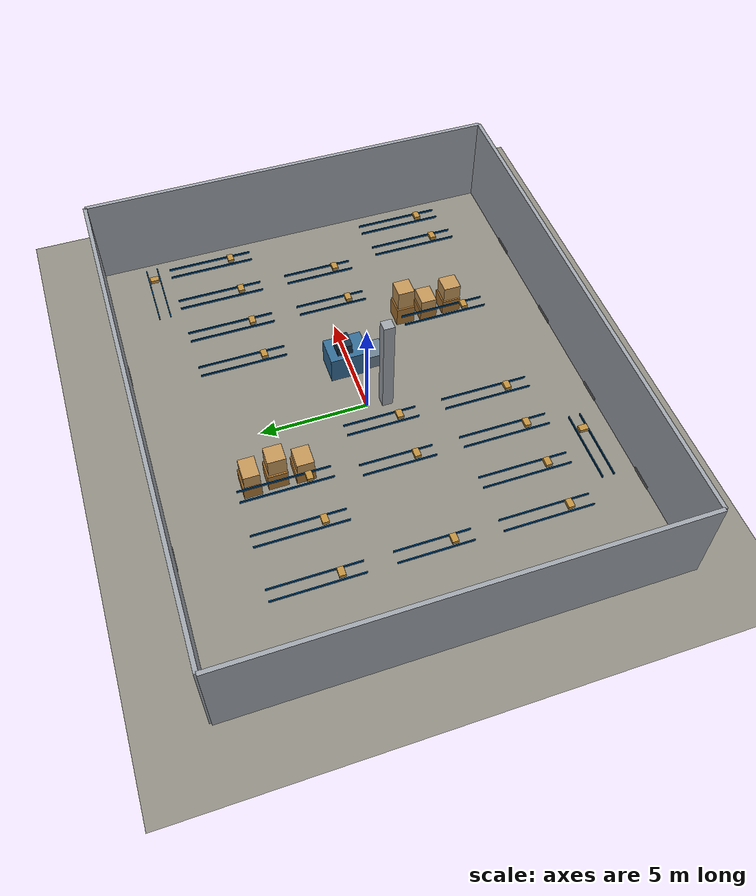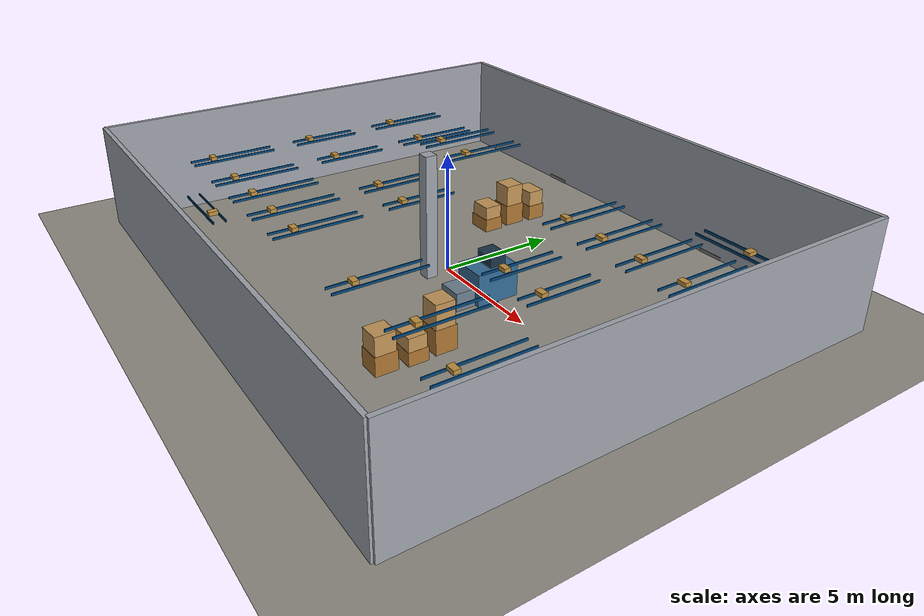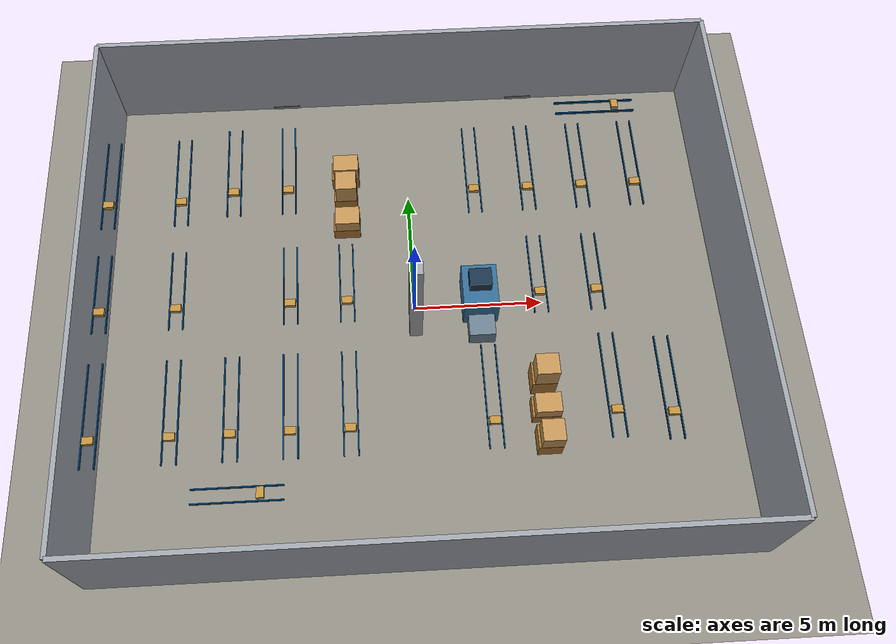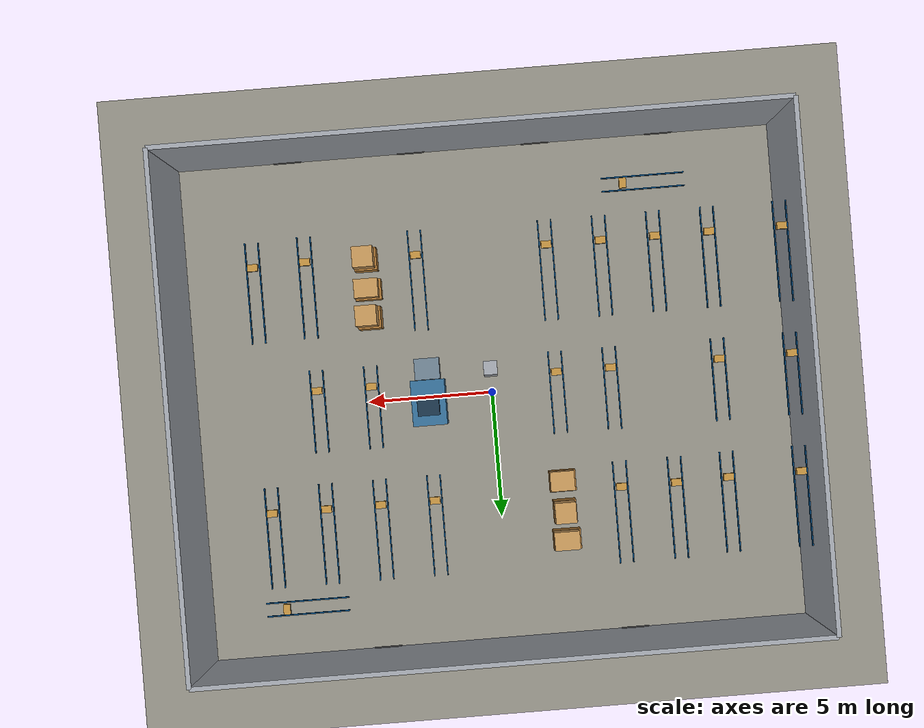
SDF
<sdf version="1.8">
 <world name="warehouse_full_4cam_mixed">
  <model name="ground_plane">
   <static>true</static>
   <link name="link">
    <collision name="collision">
     <geometry><plane><normal>0 0 1</normal><size>24.5 20.5</size></plane></geometry>
    </collision>
    <visual name="visual">
     <geometry><plane><normal>0 0 1</normal><size>24.5 20.5</size></plane></geometry>
     <material>
      <ambient>0.56 0.55 0.51 1</ambient>
      <diffuse>0.56 0.55 0.51 1</diffuse>
      <specular>0.05 0.05 0.05 1</specular>
     </material>
    </visual>
   </link>
  </model>
  <model name="warehouse_walls">
   <static>true</static>
   <link name="wall_east">
    <pose>12.000 0.000 2.250 0 0 0</pose>
    <collision name="collision"><geometry><box><size>0.180 20.000 4.500</size></box></geometry></collision>
    <sensor name="contact" type="contact">
     <contact><collision>collision</collision></contact>
     <update_rate>60</update_rate>
    </sensor>
    <visual name="visual">
     <geometry><box><size>0.180 20.000 4.500</size></box></geometry>
     <material><ambient>0.62 0.64 0.67 1</ambient><diffuse>0.62 0.64 0.67 1</diffuse></material>
    </visual>
   </link>
   <link name="wall_west">
    <pose>-12.000 0.000 2.250 0 0 0</pose>
    <collision name="collision"><geometry><box><size>0.180 20.000 4.500</size></box></geometry></collision>
    <sensor name="contact" type="contact">
     <contact><collision>collision</collision></contact>
     <update_rate>60</update_rate>
    </sensor>
    <visual name="visual">
     <geometry><box><size>0.180 20.000 4.500</size></box></geometry>
     <material><ambient>0.62 0.64 0.67 1</ambient><diffuse>0.62 0.64 0.67 1</diffuse></material>
    </visual>
   </link>
   <link name="wall_north">
    <pose>0.000 10.000 2.250 0 0 0</pose>
    <collision name="collision"><geometry><box><size>24.000 0.180 4.500</size></box></geometry></collision>
    <sensor name="contact" type="contact">
     <contact><collision>collision</collision></contact>
     <update_rate>60</update_rate>
    </sensor>
    <visual name="visual">
     <geometry><box><size>24.000 0.180 4.500</size></box></geometry>
     <material><ambient>0.62 0.64 0.67 1</ambient><diffuse>0.62 0.64 0.67 1</diffuse></material>
    </visual>
   </link>
   <link name="wall_south">
    <pose>0.000 -10.000 2.250 0 0 0</pose>
    <collision name="collision"><geometry><box><size>24.000 0.180 4.500</size></box></geometry></collision>
    <sensor name="contact" type="contact">
     <contact><collision>collision</collision></contact>
     <update_rate>60</update_rate>
    </sensor>
    <visual name="visual">
     <geometry><box><size>24.000 0.180 4.500</size></box></geometry>
     <material><ambient>0.62 0.64 0.67 1</ambient><diffuse>0.62 0.64 0.67 1</diffuse></material>
    </visual>
   </link>
   <link name="south_dock_a">
    <pose>-7.500 -9.920 0.075 0 0 0</pose>
    <visual name="visual">
     <geometry><box><size>1.100 0.070 0.150</size></box></geometry>
     <material><ambient>0.50 0.50 0.50 1</ambient><diffuse>0.50 0.50 0.50 1</diffuse></material>
    </visual>
   </link>
   <link name="south_dock_b">
    <pose>-2.500 -9.920 0.075 0 0 0</pose>
    <visual name="visual">
     <geometry><box><size>1.100 0.070 0.150</size></box></geometry>
     <material><ambient>0.50 0.50 0.50 1</ambient><diffuse>0.50 0.50 0.50 1</diffuse></material>
    </visual>
   </link>
   <link name="south_dock_c">
    <pose>2.500 -9.920 0.075 0 0 0</pose>
    <visual name="visual">
     <geometry><box><size>1.100 0.070 0.150</size></box></geometry>
     <material><ambient>0.50 0.50 0.50 1</ambient><diffuse>0.50 0.50 0.50 1</diffuse></material>
    </visual>
   </link>
   <link name="south_dock_d">
    <pose>7.500 -9.920 0.075 0 0 0</pose>
    <visual name="visual">
     <geometry><box><size>1.100 0.070 0.150</size></box></geometry>
     <material><ambient>0.50 0.50 0.50 1</ambient><diffuse>0.50 0.50 0.50 1</diffuse></material>
    </visual>
   </link>
   <link name="north_dock_a">
    <pose>-5.000 9.920 0.075 0 0 0</pose>
    <visual name="visual">
     <geometry><box><size>1.100 0.070 0.150</size></box></geometry>
     <material><ambient>0.50 0.50 0.50 1</ambient><diffuse>0.50 0.50 0.50 1</diffuse></material>
    </visual>
   </link>
   <link name="north_dock_b">
    <pose>5.000 9.920 0.075 0 0 0</pose>
    <visual name="visual">
     <geometry><box><size>1.100 0.070 0.150</size></box></geometry>
     <material><ambient>0.50 0.50 0.50 1</ambient><diffuse>0.50 0.50 0.50 1</diffuse></material>
    </visual>
   </link>
  </model>
  <model name="warehouse_rack_occluders">
   <static>true</static>
   <link name="rack_W1_south">
    <pose>-8.825 -4.550 1.045 0 0 0</pose>
    <collision name="collision"><geometry><box><size>0.550 3.900 2.090</size></box></geometry></collision>
    <sensor name="contact" type="contact">
     <contact><collision>collision</collision></contact>
     <update_rate>60</update_rate>
    </sensor>
   </link>
   <link name="rail_W1_south_west">
    <pose>-9.080 -4.550 2.160 0 0 0</pose>
    <visual name="visual">
     <geometry><box><size>0.040 3.900 0.100</size></box></geometry>
     <material><ambient>0.00 0.28 0.50 1</ambient><diffuse>0.00 0.28 0.50 1</diffuse></material>
    </visual>
   </link>
   <link name="rail_W1_south_east">
    <pose>-8.570 -4.550 2.160 0 0 0</pose>
    <visual name="visual">
     <geometry><box><size>0.040 3.900 0.100</size></box></geometry>
     <material><ambient>0.00 0.28 0.50 1</ambient><diffuse>0.00 0.28 0.50 1</diffuse></material>
    </visual>
   </link>
   <link name="shelfbox_W1_south">
    <pose>-8.825 -5.525 2.290 0 0 0</pose>
    <visual name="visual">
     <geometry><box><size>0.390 0.270 0.160</size></box></geometry>
     <material><ambient>0.75 0.56 0.24 1</ambient><diffuse>0.75 0.56 0.24 1</diffuse></material>
    </visual>
   </link>
   <link name="rack_W1_mid">
    <pose>-8.825 0.200 1.045 0 0 0</pose>
    <collision name="collision"><geometry><box><size>0.550 3.200 2.090</size></box></geometry></collision>
    <sensor name="contact" type="contact">
     <contact><collision>collision</collision></contact>
     <update_rate>60</update_rate>
    </sensor>
   </link>
   <link name="rail_W1_mid_west">
    <pose>-9.080 0.200 2.160 0 0 0</pose>
    <visual name="visual">
     <geometry><box><size>0.040 3.200 0.100</size></box></geometry>
     <material><ambient>0.00 0.28 0.50 1</ambient><diffuse>0.00 0.28 0.50 1</diffuse></material>
    </visual>
   </link>
   <link name="rail_W1_mid_east">
    <pose>-8.570 0.200 2.160 0 0 0</pose>
    <visual name="visual">
     <geometry><box><size>0.040 3.200 0.100</size></box></geometry>
     <material><ambient>0.00 0.28 0.50 1</ambient><diffuse>0.00 0.28 0.50 1</diffuse></material>
    </visual>
   </link>
   <link name="shelfbox_W1_mid">
    <pose>-8.825 -0.600 2.290 0 0 0</pose>
    <visual name="visual">
     <geometry><box><size>0.390 0.270 0.160</size></box></geometry>
     <material><ambient>0.75 0.56 0.24 1</ambient><diffuse>0.75 0.56 0.24 1</diffuse></material>
    </visual>
   </link>
   <link name="rack_W1_north">
    <pose>-8.825 4.950 1.045 0 0 0</pose>
    <collision name="collision"><geometry><box><size>0.550 3.900 2.090</size></box></geometry></collision>
    <sensor name="contact" type="contact">
     <contact><collision>collision</collision></contact>
     <update_rate>60</update_rate>
    </sensor>
   </link>
   <link name="rail_W1_north_west">
    <pose>-9.080 4.950 2.160 0 0 0</pose>
    <visual name="visual">
     <geometry><box><size>0.040 3.900 0.100</size></box></geometry>
     <material><ambient>0.00 0.28 0.50 1</ambient><diffuse>0.00 0.28 0.50 1</diffuse></material>
    </visual>
   </link>
   <link name="rail_W1_north_east">
    <pose>-8.570 4.950 2.160 0 0 0</pose>
    <visual name="visual">
     <geometry><box><size>0.040 3.900 0.100</size></box></geometry>
     <material><ambient>0.00 0.28 0.50 1</ambient><diffuse>0.00 0.28 0.50 1</diffuse></material>
    </visual>
   </link>
   <link name="shelfbox_W1_north">
    <pose>-8.825 3.975 2.290 0 0 0</pose>
    <visual name="visual">
     <geometry><box><size>0.390 0.270 0.160</size></box></geometry>
     <material><ambient>0.75 0.56 0.24 1</ambient><diffuse>0.75 0.56 0.24 1</diffuse></material>
    </visual>
   </link>
   <link name="rack_W2_south">
    <pose>-6.725 -4.550 1.045 0 0 0</pose>
    <collision name="collision"><geometry><box><size>0.550 3.900 2.090</size></box></geometry></collision>
    <sensor name="contact" type="contact">
     <contact><collision>collision</collision></contact>
     <update_rate>60</update_rate>
    </sensor>
   </link>
   <link name="rail_W2_south_west">
    <pose>-6.980 -4.550 2.160 0 0 0</pose>
    <visual name="visual">
     <geometry><box><size>0.040 3.900 0.100</size></box></geometry>
     <material><ambient>0.00 0.28 0.50 1</ambient><diffuse>0.00 0.28 0.50 1</diffuse></material>
    </visual>
   </link>
   <link name="rail_W2_south_east">
    <pose>-6.470 -4.550 2.160 0 0 0</pose>
    <visual name="visual">
     <geometry><box><size>0.040 3.900 0.100</size></box></geometry>
     <material><ambient>0.00 0.28 0.50 1</ambient><diffuse>0.00 0.28 0.50 1</diffuse></material>
    </visual>
   </link>
   <link name="shelfbox_W2_south">
    <pose>-6.725 -5.525 2.290 0 0 0</pose>
    <visual name="visual">
     <geometry><box><size>0.390 0.270 0.160</size></box></geometry>
     <material><ambient>0.75 0.56 0.24 1</ambient><diffuse>0.75 0.56 0.24 1</diffuse></material>
    </visual>
   </link>
   <link name="rack_W2_mid">
    <pose>-6.4500 -7.6500 1.0450 0.0000 0.0000 1.5708</pose>
    <collision name="collision"><geometry><box><size>0.550 3.200 2.090</size></box></geometry></collision>
    <sensor name="contact" type="contact">
     <contact><collision>collision</collision></contact>
     <update_rate>60</update_rate>
    </sensor>
   </link>
   <link name="rail_W2_mid_west">
    <pose>-6.4500 -7.9050 2.1600 0.0000 0.0000 1.5708</pose>
    <visual name="visual">
     <geometry><box><size>0.040 3.200 0.100</size></box></geometry>
     <material><ambient>0.00 0.28 0.50 1</ambient><diffuse>0.00 0.28 0.50 1</diffuse></material>
    </visual>
   </link>
   <link name="rail_W2_mid_east">
    <pose>-6.4500 -7.3950 2.1600 0.0000 0.0000 1.5708</pose>
    <visual name="visual">
     <geometry><box><size>0.040 3.200 0.100</size></box></geometry>
     <material><ambient>0.00 0.28 0.50 1</ambient><diffuse>0.00 0.28 0.50 1</diffuse></material>
    </visual>
   </link>
   <link name="shelfbox_W2_mid">
    <pose>-5.6500 -7.6500 2.2900 0.0000 0.0000 1.5708</pose>
    <visual name="visual">
     <geometry><box><size>0.390 0.270 0.160</size></box></geometry>
     <material><ambient>0.75 0.56 0.24 1</ambient><diffuse>0.75 0.56 0.24 1</diffuse></material>
    </visual>
   </link>
   <link name="rack_W2_north">
    <pose>-6.725 4.950 1.305 0 0 0</pose>
    <collision name="collision"><geometry><box><size>0.550 3.900 2.610</size></box></geometry></collision>
    <sensor name="contact" type="contact">
     <contact><collision>collision</collision></contact>
     <update_rate>60</update_rate>
    </sensor>
   </link>
   <link name="rail_W2_north_west">
    <pose>-6.980 4.950 2.680 0 0 0</pose>
    <visual name="visual">
     <geometry><box><size>0.040 3.900 0.100</size></box></geometry>
     <material><ambient>0.00 0.28 0.50 1</ambient><diffuse>0.00 0.28 0.50 1</diffuse></material>
    </visual>
   </link>
   <link name="rail_W2_north_east">
    <pose>-6.470 4.950 2.680 0 0 0</pose>
    <visual name="visual">
     <geometry><box><size>0.040 3.900 0.100</size></box></geometry>
     <material><ambient>0.00 0.28 0.50 1</ambient><diffuse>0.00 0.28 0.50 1</diffuse></material>
    </visual>
   </link>
   <link name="shelfbox_W2_north">
    <pose>-6.725 3.975 2.810 0 0 0</pose>
    <visual name="visual">
     <geometry><box><size>0.390 0.270 0.160</size></box></geometry>
     <material><ambient>0.75 0.56 0.24 1</ambient><diffuse>0.75 0.56 0.24 1</diffuse></material>
    </visual>
   </link>
   <link name="rack_W3_south">
    <pose>-4.625 -4.550 1.045 0 0 0</pose>
    <collision name="collision"><geometry><box><size>0.550 3.900 2.090</size></box></geometry></collision>
    <sensor name="contact" type="contact">
     <contact><collision>collision</collision></contact>
     <update_rate>60</update_rate>
    </sensor>
   </link>
   <link name="rail_W3_south_west">
    <pose>-4.880 -4.550 2.160 0 0 0</pose>
    <visual name="visual">
     <geometry><box><size>0.040 3.900 0.100</size></box></geometry>
     <material><ambient>0.00 0.28 0.50 1</ambient><diffuse>0.00 0.28 0.50 1</diffuse></material>
    </visual>
   </link>
   <link name="rail_W3_south_east">
    <pose>-4.370 -4.550 2.160 0 0 0</pose>
    <visual name="visual">
     <geometry><box><size>0.040 3.900 0.100</size></box></geometry>
     <material><ambient>0.00 0.28 0.50 1</ambient><diffuse>0.00 0.28 0.50 1</diffuse></material>
    </visual>
   </link>
   <link name="shelfbox_W3_south">
    <pose>-4.625 -5.525 2.290 0 0 0</pose>
    <visual name="visual">
     <geometry><box><size>0.390 0.270 0.160</size></box></geometry>
     <material><ambient>0.75 0.56 0.24 1</ambient><diffuse>0.75 0.56 0.24 1</diffuse></material>
    </visual>
   </link>
   <link name="rack_W3_mid">
    <pose>-4.625 0.200 1.045 0 0 0</pose>
    <collision name="collision"><geometry><box><size>0.550 3.200 2.090</size></box></geometry></collision>
    <sensor name="contact" type="contact">
     <contact><collision>collision</collision></contact>
     <update_rate>60</update_rate>
    </sensor>
   </link>
   <link name="rail_W3_mid_west">
    <pose>-4.880 0.200 2.160 0 0 0</pose>
    <visual name="visual">
     <geometry><box><size>0.040 3.200 0.100</size></box></geometry>
     <material><ambient>0.00 0.28 0.50 1</ambient><diffuse>0.00 0.28 0.50 1</diffuse></material>
    </visual>
   </link>
   <link name="rail_W3_mid_east">
    <pose>-4.370 0.200 2.160 0 0 0</pose>
    <visual name="visual">
     <geometry><box><size>0.040 3.200 0.100</size></box></geometry>
     <material><ambient>0.00 0.28 0.50 1</ambient><diffuse>0.00 0.28 0.50 1</diffuse></material>
    </visual>
   </link>
   <link name="shelfbox_W3_mid">
    <pose>-4.625 -0.600 2.290 0 0 0</pose>
    <visual name="visual">
     <geometry><box><size>0.390 0.270 0.160</size></box></geometry>
     <material><ambient>0.75 0.56 0.24 1</ambient><diffuse>0.75 0.56 0.24 1</diffuse></material>
    </visual>
   </link>
   <link name="rack_W3_north">
    <pose>-4.625 4.950 1.305 0 0 0</pose>
    <collision name="collision"><geometry><box><size>0.550 3.900 2.610</size></box></geometry></collision>
    <sensor name="contact" type="contact">
     <contact><collision>collision</collision></contact>
     <update_rate>60</update_rate>
    </sensor>
   </link>
   <link name="rail_W3_north_west">
    <pose>-4.880 4.950 2.680 0 0 0</pose>
    <visual name="visual">
     <geometry><box><size>0.040 3.900 0.100</size></box></geometry>
     <material><ambient>0.00 0.28 0.50 1</ambient><diffuse>0.00 0.28 0.50 1</diffuse></material>
    </visual>
   </link>
   <link name="rail_W3_north_east">
    <pose>-4.370 4.950 2.680 0 0 0</pose>
    <visual name="visual">
     <geometry><box><size>0.040 3.900 0.100</size></box></geometry>
     <material><ambient>0.00 0.28 0.50 1</ambient><diffuse>0.00 0.28 0.50 1</diffuse></material>
    </visual>
   </link>
   <link name="shelfbox_W3_north">
    <pose>-4.625 3.975 2.810 0 0 0</pose>
    <visual name="visual">
     <geometry><box><size>0.390 0.270 0.160</size></box></geometry>
     <material><ambient>0.75 0.56 0.24 1</ambient><diffuse>0.75 0.56 0.24 1</diffuse></material>
    </visual>
   </link>
   <link name="rack_W4_south">
    <pose>-2.525 -4.550 1.045 0 0 0</pose>
    <collision name="collision"><geometry><box><size>0.550 3.900 2.090</size></box></geometry></collision>
    <sensor name="contact" type="contact">
     <contact><collision>collision</collision></contact>
     <update_rate>60</update_rate>
    </sensor>
   </link>
   <link name="rail_W4_south_west">
    <pose>-2.780 -4.550 2.160 0 0 0</pose>
    <visual name="visual">
     <geometry><box><size>0.040 3.900 0.100</size></box></geometry>
     <material><ambient>0.00 0.28 0.50 1</ambient><diffuse>0.00 0.28 0.50 1</diffuse></material>
    </visual>
   </link>
   <link name="rail_W4_south_east">
    <pose>-2.270 -4.550 2.160 0 0 0</pose>
    <visual name="visual">
     <geometry><box><size>0.040 3.900 0.100</size></box></geometry>
     <material><ambient>0.00 0.28 0.50 1</ambient><diffuse>0.00 0.28 0.50 1</diffuse></material>
    </visual>
   </link>
   <link name="shelfbox_W4_south">
    <pose>-2.525 -5.525 2.290 0 0 0</pose>
    <visual name="visual">
     <geometry><box><size>0.390 0.270 0.160</size></box></geometry>
     <material><ambient>0.75 0.56 0.24 1</ambient><diffuse>0.75 0.56 0.24 1</diffuse></material>
    </visual>
   </link>
   <link name="rack_W4_mid">
    <pose>-2.525 0.200 1.045 0 0 0</pose>
    <collision name="collision"><geometry><box><size>0.550 3.200 2.090</size></box></geometry></collision>
    <sensor name="contact" type="contact">
     <contact><collision>collision</collision></contact>
     <update_rate>60</update_rate>
    </sensor>
   </link>
   <link name="rail_W4_mid_west">
    <pose>-2.780 0.200 2.160 0 0 0</pose>
    <visual name="visual">
     <geometry><box><size>0.040 3.200 0.100</size></box></geometry>
     <material><ambient>0.00 0.28 0.50 1</ambient><diffuse>0.00 0.28 0.50 1</diffuse></material>
    </visual>
   </link>
   <link name="rail_W4_mid_east">
    <pose>-2.270 0.200 2.160 0 0 0</pose>
    <visual name="visual">
     <geometry><box><size>0.040 3.200 0.100</size></box></geometry>
     <material><ambient>0.00 0.28 0.50 1</ambient><diffuse>0.00 0.28 0.50 1</diffuse></material>
    </visual>
   </link>
   <link name="shelfbox_W4_mid">
    <pose>-2.525 -0.600 2.290 0 0 0</pose>
    <visual name="visual">
     <geometry><box><size>0.390 0.270 0.160</size></box></geometry>
     <material><ambient>0.75 0.56 0.24 1</ambient><diffuse>0.75 0.56 0.24 1</diffuse></material>
    </visual>
   </link>
   <link name="rack_E1_south">
    <pose>2.525 -4.550 1.045 0 0 0</pose>
    <collision name="collision"><geometry><box><size>0.550 3.900 2.090</size></box></geometry></collision>
    <sensor name="contact" type="contact">
     <contact><collision>collision</collision></contact>
     <update_rate>60</update_rate>
    </sensor>
   </link>
   <link name="rail_E1_south_west">
    <pose>2.270 -4.550 2.160 0 0 0</pose>
    <visual name="visual">
     <geometry><box><size>0.040 3.900 0.100</size></box></geometry>
     <material><ambient>0.00 0.28 0.50 1</ambient><diffuse>0.00 0.28 0.50 1</diffuse></material>
    </visual>
   </link>
   <link name="rail_E1_south_east">
    <pose>2.780 -4.550 2.160 0 0 0</pose>
    <visual name="visual">
     <geometry><box><size>0.040 3.900 0.100</size></box></geometry>
     <material><ambient>0.00 0.28 0.50 1</ambient><diffuse>0.00 0.28 0.50 1</diffuse></material>
    </visual>
   </link>
   <link name="shelfbox_E1_south">
    <pose>2.525 -5.525 2.290 0 0 0</pose>
    <visual name="visual">
     <geometry><box><size>0.390 0.270 0.160</size></box></geometry>
     <material><ambient>0.75 0.56 0.24 1</ambient><diffuse>0.75 0.56 0.24 1</diffuse></material>
    </visual>
   </link>
   <link name="rack_E1_north">
    <pose>2.525 4.950 1.045 0 0 0</pose>
    <collision name="collision"><geometry><box><size>0.550 3.900 2.090</size></box></geometry></collision>
    <sensor name="contact" type="contact">
     <contact><collision>collision</collision></contact>
     <update_rate>60</update_rate>
    </sensor>
   </link>
   <link name="rail_E1_north_west">
    <pose>2.270 4.950 2.160 0 0 0</pose>
    <visual name="visual">
     <geometry><box><size>0.040 3.900 0.100</size></box></geometry>
     <material><ambient>0.00 0.28 0.50 1</ambient><diffuse>0.00 0.28 0.50 1</diffuse></material>
    </visual>
   </link>
   <link name="rail_E1_north_east">
    <pose>2.780 4.950 2.160 0 0 0</pose>
    <visual name="visual">
     <geometry><box><size>0.040 3.900 0.100</size></box></geometry>
     <material><ambient>0.00 0.28 0.50 1</ambient><diffuse>0.00 0.28 0.50 1</diffuse></material>
    </visual>
   </link>
   <link name="shelfbox_E1_north">
    <pose>2.525 3.975 2.290 0 0 0</pose>
    <visual name="visual">
     <geometry><box><size>0.390 0.270 0.160</size></box></geometry>
     <material><ambient>0.75 0.56 0.24 1</ambient><diffuse>0.75 0.56 0.24 1</diffuse></material>
    </visual>
   </link>
   <link name="rack_E2_mid">
    <pose>4.625 0.200 1.045 0 0 0</pose>
    <collision name="collision"><geometry><box><size>0.550 3.200 2.090</size></box></geometry></collision>
    <sensor name="contact" type="contact">
     <contact><collision>collision</collision></contact>
     <update_rate>60</update_rate>
    </sensor>
   </link>
   <link name="rail_E2_mid_west">
    <pose>4.370 0.200 2.160 0 0 0</pose>
    <visual name="visual">
     <geometry><box><size>0.040 3.200 0.100</size></box></geometry>
     <material><ambient>0.00 0.28 0.50 1</ambient><diffuse>0.00 0.28 0.50 1</diffuse></material>
    </visual>
   </link>
   <link name="rail_E2_mid_east">
    <pose>4.880 0.200 2.160 0 0 0</pose>
    <visual name="visual">
     <geometry><box><size>0.040 3.200 0.100</size></box></geometry>
     <material><ambient>0.00 0.28 0.50 1</ambient><diffuse>0.00 0.28 0.50 1</diffuse></material>
    </visual>
   </link>
   <link name="shelfbox_E2_mid">
    <pose>4.625 -0.600 2.290 0 0 0</pose>
    <visual name="visual">
     <geometry><box><size>0.390 0.270 0.160</size></box></geometry>
     <material><ambient>0.75 0.56 0.24 1</ambient><diffuse>0.75 0.56 0.24 1</diffuse></material>
    </visual>
   </link>
   <link name="rack_E2_north">
    <pose>4.625 4.950 1.045 0 0 0</pose>
    <collision name="collision"><geometry><box><size>0.550 3.900 2.090</size></box></geometry></collision>
    <sensor name="contact" type="contact">
     <contact><collision>collision</collision></contact>
     <update_rate>60</update_rate>
    </sensor>
   </link>
   <link name="rail_E2_north_west">
    <pose>4.370 4.950 2.160 0 0 0</pose>
    <visual name="visual">
     <geometry><box><size>0.040 3.900 0.100</size></box></geometry>
     <material><ambient>0.00 0.28 0.50 1</ambient><diffuse>0.00 0.28 0.50 1</diffuse></material>
    </visual>
   </link>
   <link name="rail_E2_north_east">
    <pose>4.880 4.950 2.160 0 0 0</pose>
    <visual name="visual">
     <geometry><box><size>0.040 3.900 0.100</size></box></geometry>
     <material><ambient>0.00 0.28 0.50 1</ambient><diffuse>0.00 0.28 0.50 1</diffuse></material>
    </visual>
   </link>
   <link name="shelfbox_E2_north">
    <pose>4.625 3.975 2.290 0 0 0</pose>
    <visual name="visual">
     <geometry><box><size>0.390 0.270 0.160</size></box></geometry>
     <material><ambient>0.75 0.56 0.24 1</ambient><diffuse>0.75 0.56 0.24 1</diffuse></material>
    </visual>
   </link>
   <link name="rack_E3_south">
    <pose>6.725 -4.550 1.305 0 0 0</pose>
    <collision name="collision"><geometry><box><size>0.550 3.900 2.610</size></box></geometry></collision>
    <sensor name="contact" type="contact">
     <contact><collision>collision</collision></contact>
     <update_rate>60</update_rate>
    </sensor>
   </link>
   <link name="rail_E3_south_west">
    <pose>6.470 -4.550 2.680 0 0 0</pose>
    <visual name="visual">
     <geometry><box><size>0.040 3.900 0.100</size></box></geometry>
     <material><ambient>0.00 0.28 0.50 1</ambient><diffuse>0.00 0.28 0.50 1</diffuse></material>
    </visual>
   </link>
   <link name="rail_E3_south_east">
    <pose>6.980 -4.550 2.680 0 0 0</pose>
    <visual name="visual">
     <geometry><box><size>0.040 3.900 0.100</size></box></geometry>
     <material><ambient>0.00 0.28 0.50 1</ambient><diffuse>0.00 0.28 0.50 1</diffuse></material>
    </visual>
   </link>
   <link name="shelfbox_E3_south">
    <pose>6.725 -5.525 2.810 0 0 0</pose>
    <visual name="visual">
     <geometry><box><size>0.390 0.270 0.160</size></box></geometry>
     <material><ambient>0.75 0.56 0.24 1</ambient><diffuse>0.75 0.56 0.24 1</diffuse></material>
    </visual>
   </link>
   <link name="rack_E3_mid">
    <pose>6.725 0.200 1.045 0 0 0</pose>
    <collision name="collision"><geometry><box><size>0.550 3.200 2.090</size></box></geometry></collision>
    <sensor name="contact" type="contact">
     <contact><collision>collision</collision></contact>
     <update_rate>60</update_rate>
    </sensor>
   </link>
   <link name="rail_E3_mid_west">
    <pose>6.470 0.200 2.160 0 0 0</pose>
    <visual name="visual">
     <geometry><box><size>0.040 3.200 0.100</size></box></geometry>
     <material><ambient>0.00 0.28 0.50 1</ambient><diffuse>0.00 0.28 0.50 1</diffuse></material>
    </visual>
   </link>
   <link name="rail_E3_mid_east">
    <pose>6.980 0.200 2.160 0 0 0</pose>
    <visual name="visual">
     <geometry><box><size>0.040 3.200 0.100</size></box></geometry>
     <material><ambient>0.00 0.28 0.50 1</ambient><diffuse>0.00 0.28 0.50 1</diffuse></material>
    </visual>
   </link>
   <link name="shelfbox_E3_mid">
    <pose>6.725 -0.600 2.290 0 0 0</pose>
    <visual name="visual">
     <geometry><box><size>0.390 0.270 0.160</size></box></geometry>
     <material><ambient>0.75 0.56 0.24 1</ambient><diffuse>0.75 0.56 0.24 1</diffuse></material>
    </visual>
   </link>
   <link name="rack_E3_north">
    <pose>6.725 4.950 1.045 0 0 0</pose>
    <collision name="collision"><geometry><box><size>0.550 3.900 2.090</size></box></geometry></collision>
    <sensor name="contact" type="contact">
     <contact><collision>collision</collision></contact>
     <update_rate>60</update_rate>
    </sensor>
   </link>
   <link name="rail_E3_north_west">
    <pose>6.470 4.950 2.160 0 0 0</pose>
    <visual name="visual">
     <geometry><box><size>0.040 3.900 0.100</size></box></geometry>
     <material><ambient>0.00 0.28 0.50 1</ambient><diffuse>0.00 0.28 0.50 1</diffuse></material>
    </visual>
   </link>
   <link name="rail_E3_north_east">
    <pose>6.980 4.950 2.160 0 0 0</pose>
    <visual name="visual">
     <geometry><box><size>0.040 3.900 0.100</size></box></geometry>
     <material><ambient>0.00 0.28 0.50 1</ambient><diffuse>0.00 0.28 0.50 1</diffuse></material>
    </visual>
   </link>
   <link name="shelfbox_E3_north">
    <pose>6.725 3.975 2.290 0 0 0</pose>
    <visual name="visual">
     <geometry><box><size>0.390 0.270 0.160</size></box></geometry>
     <material><ambient>0.75 0.56 0.24 1</ambient><diffuse>0.75 0.56 0.24 1</diffuse></material>
    </visual>
   </link>
   <link name="rack_E4_south">
    <pose>8.825 -4.550 1.045 0 0 0</pose>
    <collision name="collision"><geometry><box><size>0.550 3.900 2.090</size></box></geometry></collision>
    <sensor name="contact" type="contact">
     <contact><collision>collision</collision></contact>
     <update_rate>60</update_rate>
    </sensor>
   </link>
   <link name="rail_E4_south_west">
    <pose>8.570 -4.550 2.160 0 0 0</pose>
    <visual name="visual">
     <geometry><box><size>0.040 3.900 0.100</size></box></geometry>
     <material><ambient>0.00 0.28 0.50 1</ambient><diffuse>0.00 0.28 0.50 1</diffuse></material>
    </visual>
   </link>
   <link name="rail_E4_south_east">
    <pose>9.080 -4.550 2.160 0 0 0</pose>
    <visual name="visual">
     <geometry><box><size>0.040 3.900 0.100</size></box></geometry>
     <material><ambient>0.00 0.28 0.50 1</ambient><diffuse>0.00 0.28 0.50 1</diffuse></material>
    </visual>
   </link>
   <link name="shelfbox_E4_south">
    <pose>8.825 -5.525 2.290 0 0 0</pose>
    <visual name="visual">
     <geometry><box><size>0.390 0.270 0.160</size></box></geometry>
     <material><ambient>0.75 0.56 0.24 1</ambient><diffuse>0.75 0.56 0.24 1</diffuse></material>
    </visual>
   </link>
   <link name="rack_E4_mid">
    <pose>7.7500 7.7000 1.0450 0.0000 0.0000 1.5708</pose>
    <collision name="collision"><geometry><box><size>0.550 3.200 2.090</size></box></geometry></collision>
    <sensor name="contact" type="contact">
     <contact><collision>collision</collision></contact>
     <update_rate>60</update_rate>
    </sensor>
   </link>
   <link name="rail_E4_mid_west">
    <pose>7.7500 7.4450 2.1600 0.0000 0.0000 1.5708</pose>
    <visual name="visual">
     <geometry><box><size>0.040 3.200 0.100</size></box></geometry>
     <material><ambient>0.00 0.28 0.50 1</ambient><diffuse>0.00 0.28 0.50 1</diffuse></material>
    </visual>
   </link>
   <link name="rail_E4_mid_east">
    <pose>7.7500 7.9550 2.1600 0.0000 0.0000 1.5708</pose>
    <visual name="visual">
     <geometry><box><size>0.040 3.200 0.100</size></box></geometry>
     <material><ambient>0.00 0.28 0.50 1</ambient><diffuse>0.00 0.28 0.50 1</diffuse></material>
    </visual>
   </link>
   <link name="shelfbox_E4_mid">
    <pose>8.5500 7.7000 2.2900 0.0000 0.0000 1.5708</pose>
    <visual name="visual">
     <geometry><box><size>0.390 0.270 0.160</size></box></geometry>
     <material><ambient>0.75 0.56 0.24 1</ambient><diffuse>0.75 0.56 0.24 1</diffuse></material>
    </visual>
   </link>
   <link name="rack_E4_north">
    <pose>8.825 4.950 1.045 0 0 0</pose>
    <collision name="collision"><geometry><box><size>0.550 3.900 2.090</size></box></geometry></collision>
    <sensor name="contact" type="contact">
     <contact><collision>collision</collision></contact>
     <update_rate>60</update_rate>
    </sensor>
   </link>
   <link name="rail_E4_north_west">
    <pose>8.570 4.950 2.160 0 0 0</pose>
    <visual name="visual">
     <geometry><box><size>0.040 3.900 0.100</size></box></geometry>
     <material><ambient>0.00 0.28 0.50 1</ambient><diffuse>0.00 0.28 0.50 1</diffuse></material>
    </visual>
   </link>
   <link name="rail_E4_north_east">
    <pose>9.080 4.950 2.160 0 0 0</pose>
    <visual name="visual">
     <geometry><box><size>0.040 3.900 0.100</size></box></geometry>
     <material><ambient>0.00 0.28 0.50 1</ambient><diffuse>0.00 0.28 0.50 1</diffuse></material>
    </visual>
   </link>
   <link name="shelfbox_E4_north">
    <pose>8.825 3.975 2.290 0 0 0</pose>
    <visual name="visual">
     <geometry><box><size>0.390 0.270 0.160</size></box></geometry>
     <material><ambient>0.75 0.56 0.24 1</ambient><diffuse>0.75 0.56 0.24 1</diffuse></material>
    </visual>
   </link>
   <link name="rack_W0_south">
    <pose>-11.635 -4.550 1.045 0 0 0</pose>
    <collision name="collision"><geometry><box><size>0.550 3.900 2.090</size></box></geometry></collision>
    <sensor name="contact" type="contact">
     <contact><collision>collision</collision></contact>
     <update_rate>60</update_rate>
    </sensor>
   </link>
   <link name="rail_W0_south_west">
    <pose>-11.890 -4.550 2.160 0 0 0</pose>
    <visual name="visual">
     <geometry><box><size>0.040 3.900 0.100</size></box></geometry>
     <material><ambient>0.00 0.28 0.50 1</ambient><diffuse>0.00 0.28 0.50 1</diffuse></material>
    </visual>
   </link>
   <link name="rail_W0_south_east">
    <pose>-11.380 -4.550 2.160 0 0 0</pose>
    <visual name="visual">
     <geometry><box><size>0.040 3.900 0.100</size></box></geometry>
     <material><ambient>0.00 0.28 0.50 1</ambient><diffuse>0.00 0.28 0.50 1</diffuse></material>
    </visual>
   </link>
   <link name="shelfbox_W0_south">
    <pose>-11.635 -5.525 2.290 0 0 0</pose>
    <visual name="visual">
     <geometry><box><size>0.390 0.270 0.160</size></box></geometry>
     <material><ambient>0.75 0.56 0.24 1</ambient><diffuse>0.75 0.56 0.24 1</diffuse></material>
    </visual>
   </link>
   <link name="rack_W0_mid">
    <pose>-11.635 0.200 1.045 0 0 0</pose>
    <collision name="collision"><geometry><box><size>0.550 3.200 2.090</size></box></geometry></collision>
    <sensor name="contact" type="contact">
     <contact><collision>collision</collision></contact>
     <update_rate>60</update_rate>
    </sensor>
   </link>
   <link name="rail_W0_mid_west">
    <pose>-11.890 0.200 2.160 0 0 0</pose>
    <visual name="visual">
     <geometry><box><size>0.040 3.200 0.100</size></box></geometry>
     <material><ambient>0.00 0.28 0.50 1</ambient><diffuse>0.00 0.28 0.50 1</diffuse></material>
    </visual>
   </link>
   <link name="rail_W0_mid_east">
    <pose>-11.380 0.200 2.160 0 0 0</pose>
    <visual name="visual">
     <geometry><box><size>0.040 3.200 0.100</size></box></geometry>
     <material><ambient>0.00 0.28 0.50 1</ambient><diffuse>0.00 0.28 0.50 1</diffuse></material>
    </visual>
   </link>
   <link name="shelfbox_W0_mid">
    <pose>-11.635 -0.600 2.290 0 0 0</pose>
    <visual name="visual">
     <geometry><box><size>0.390 0.270 0.160</size></box></geometry>
     <material><ambient>0.75 0.56 0.24 1</ambient><diffuse>0.75 0.56 0.24 1</diffuse></material>
    </visual>
   </link>
   <link name="rack_W0_north">
    <pose>-11.635 4.950 1.045 0 0 0</pose>
    <collision name="collision"><geometry><box><size>0.550 3.900 2.090</size></box></geometry></collision>
    <sensor name="contact" type="contact">
     <contact><collision>collision</collision></contact>
     <update_rate>60</update_rate>
    </sensor>
   </link>
   <link name="rail_W0_north_west">
    <pose>-11.890 4.950 2.160 0 0 0</pose>
    <visual name="visual">
     <geometry><box><size>0.040 3.900 0.100</size></box></geometry>
     <material><ambient>0.00 0.28 0.50 1</ambient><diffuse>0.00 0.28 0.50 1</diffuse></material>
    </visual>
   </link>
   <link name="rail_W0_north_east">
    <pose>-11.380 4.950 2.160 0 0 0</pose>
    <visual name="visual">
     <geometry><box><size>0.040 3.900 0.100</size></box></geometry>
     <material><ambient>0.00 0.28 0.50 1</ambient><diffuse>0.00 0.28 0.50 1</diffuse></material>
    </visual>
   </link>
   <link name="shelfbox_W0_north">
    <pose>-11.635 3.975 2.290 0 0 0</pose>
    <visual name="visual">
     <geometry><box><size>0.390 0.270 0.160</size></box></geometry>
     <material><ambient>0.75 0.56 0.24 1</ambient><diffuse>0.75 0.56 0.24 1</diffuse></material>
    </visual>
   </link>
   <link name="support_pillar">
    <pose>0.000 -0.900 2.600 0 0 0</pose>
    <collision name="collision"><geometry><box><size>0.500 0.500 5.200</size></box></geometry></collision>
    <sensor name="contact" type="contact">
     <contact><collision>collision</collision></contact>
     <update_rate>60</update_rate>
    </sensor>
    <visual name="visual">
     <geometry><box><size>0.500 0.500 5.200</size></box></geometry>
     <material><ambient>0.62 0.64 0.67 1</ambient><diffuse>0.62 0.64 0.67 1</diffuse></material>
    </visual>
   </link>
   <link name="box_bay_w4_north_box_0_lower">
    <pose>-2.5250 3.7500 0.2875 0 0 0</pose>
    <collision name="collision"><geometry><box><size>1.0500 0.8500 0.5750</size></box></geometry></collision>
    <sensor name="contact" type="contact">
     <contact><collision>collision</collision></contact>
     <update_rate>60</update_rate>
    </sensor>
    <visual name="visual">
     <geometry><box><size>1.0500 0.8500 0.5750</size></box></geometry>
     <material><ambient>0.67 0.46 0.20 1</ambient><diffuse>0.67 0.46 0.20 1</diffuse></material>
    </visual>
   </link>
   <link name="box_bay_w4_north_box_0_upper">
    <pose>-2.4850 3.7200 0.8625 0 0 0</pose>
    <collision name="collision"><geometry><box><size>0.9555 0.7735 0.5750</size></box></geometry></collision>
    <sensor name="contact" type="contact">
     <contact><collision>collision</collision></contact>
     <update_rate>60</update_rate>
    </sensor>
    <visual name="visual">
     <geometry><box><size>0.9555 0.7735 0.5750</size></box></geometry>
     <material><ambient>0.76 0.58 0.34 1</ambient><diffuse>0.76 0.58 0.34 1</diffuse></material>
    </visual>
   </link>
   <link name="box_bay_w4_north_box_1_lower">
    <pose>-2.5250 4.9500 0.4625 0 0 0</pose>
    <collision name="collision"><geometry><box><size>0.9000 0.9000 0.9250</size></box></geometry></collision>
    <sensor name="contact" type="contact">
     <contact><collision>collision</collision></contact>
     <update_rate>60</update_rate>
    </sensor>
    <visual name="visual">
     <geometry><box><size>0.9000 0.9000 0.9250</size></box></geometry>
     <material><ambient>0.67 0.46 0.20 1</ambient><diffuse>0.67 0.46 0.20 1</diffuse></material>
    </visual>
   </link>
   <link name="box_bay_w4_north_box_1_upper">
    <pose>-2.4850 4.9200 1.3875 0 0 0</pose>
    <collision name="collision"><geometry><box><size>0.8190 0.8190 0.9250</size></box></geometry></collision>
    <sensor name="contact" type="contact">
     <contact><collision>collision</collision></contact>
     <update_rate>60</update_rate>
    </sensor>
    <visual name="visual">
     <geometry><box><size>0.8190 0.8190 0.9250</size></box></geometry>
     <material><ambient>0.76 0.58 0.34 1</ambient><diffuse>0.76 0.58 0.34 1</diffuse></material>
    </visual>
   </link>
   <link name="box_bay_w4_north_box_2_lower">
    <pose>-2.5250 6.1000 0.3375 0 0 0</pose>
    <collision name="collision"><geometry><box><size>1.1000 0.8000 0.6750</size></box></geometry></collision>
    <sensor name="contact" type="contact">
     <contact><collision>collision</collision></contact>
     <update_rate>60</update_rate>
    </sensor>
    <visual name="visual">
     <geometry><box><size>1.1000 0.8000 0.6750</size></box></geometry>
     <material><ambient>0.67 0.46 0.20 1</ambient><diffuse>0.67 0.46 0.20 1</diffuse></material>
    </visual>
   </link>
   <link name="box_bay_w4_north_box_2_upper">
    <pose>-2.4850 6.0700 1.0125 0 0 0</pose>
    <collision name="collision"><geometry><box><size>1.0010 0.7280 0.6750</size></box></geometry></collision>
    <sensor name="contact" type="contact">
     <contact><collision>collision</collision></contact>
     <update_rate>60</update_rate>
    </sensor>
    <visual name="visual">
     <geometry><box><size>1.0010 0.7280 0.6750</size></box></geometry>
     <material><ambient>0.76 0.58 0.34 1</ambient><diffuse>0.76 0.58 0.34 1</diffuse></material>
    </visual>
   </link>
   <link name="box_bay_e2_south_box_0_lower">
    <pose>4.6250 -5.7000 0.3875 0 0 0</pose>
    <collision name="collision"><geometry><box><size>0.9000 0.9000 0.7750</size></box></geometry></collision>
    <sensor name="contact" type="contact">
     <contact><collision>collision</collision></contact>
     <update_rate>60</update_rate>
    </sensor>
    <visual name="visual">
     <geometry><box><size>0.9000 0.9000 0.7750</size></box></geometry>
     <material><ambient>0.67 0.46 0.20 1</ambient><diffuse>0.67 0.46 0.20 1</diffuse></material>
    </visual>
   </link>
   <link name="box_bay_e2_south_box_0_upper">
    <pose>4.6650 -5.7300 1.1625 0 0 0</pose>
    <collision name="collision"><geometry><box><size>0.8190 0.8190 0.7750</size></box></geometry></collision>
    <sensor name="contact" type="contact">
     <contact><collision>collision</collision></contact>
     <update_rate>60</update_rate>
    </sensor>
    <visual name="visual">
     <geometry><box><size>0.8190 0.8190 0.7750</size></box></geometry>
     <material><ambient>0.76 0.58 0.34 1</ambient><diffuse>0.76 0.58 0.34 1</diffuse></material>
    </visual>
   </link>
   <link name="box_bay_e2_south_box_1_lower">
    <pose>4.6250 -4.5000 0.2750 0 0 0</pose>
    <collision name="collision"><geometry><box><size>1.0500 0.8200 0.5500</size></box></geometry></collision>
    <sensor name="contact" type="contact">
     <contact><collision>collision</collision></contact>
     <update_rate>60</update_rate>
    </sensor>
    <visual name="visual">
     <geometry><box><size>1.0500 0.8200 0.5500</size></box></geometry>
     <material><ambient>0.67 0.46 0.20 1</ambient><diffuse>0.67 0.46 0.20 1</diffuse></material>
    </visual>
   </link>
   <link name="box_bay_e2_south_box_1_upper">
    <pose>4.6650 -4.5300 0.8250 0 0 0</pose>
    <collision name="collision"><geometry><box><size>0.9555 0.7462 0.5500</size></box></geometry></collision>
    <sensor name="contact" type="contact">
     <contact><collision>collision</collision></contact>
     <update_rate>60</update_rate>
    </sensor>
    <visual name="visual">
     <geometry><box><size>0.9555 0.7462 0.5500</size></box></geometry>
     <material><ambient>0.76 0.58 0.34 1</ambient><diffuse>0.76 0.58 0.34 1</diffuse></material>
    </visual>
   </link>
   <link name="box_bay_e2_south_box_2_lower">
    <pose>4.6250 -3.3500 0.5000 0 0 0</pose>
    <collision name="collision"><geometry><box><size>0.9200 0.8800 1.0000</size></box></geometry></collision>
    <sensor name="contact" type="contact">
     <contact><collision>collision</collision></contact>
     <update_rate>60</update_rate>
    </sensor>
    <visual name="visual">
     <geometry><box><size>0.9200 0.8800 1.0000</size></box></geometry>
     <material><ambient>0.67 0.46 0.20 1</ambient><diffuse>0.67 0.46 0.20 1</diffuse></material>
    </visual>
   </link>
   <link name="box_bay_e2_south_box_2_upper">
    <pose>4.6650 -3.3800 1.5000 0 0 0</pose>
    <collision name="collision"><geometry><box><size>0.8372 0.8008 1.0000</size></box></geometry></collision>
    <sensor name="contact" type="contact">
     <contact><collision>collision</collision></contact>
     <update_rate>60</update_rate>
    </sensor>
    <visual name="visual">
     <geometry><box><size>0.8372 0.8008 1.0000</size></box></geometry>
     <material><ambient>0.76 0.58 0.34 1</ambient><diffuse>0.76 0.58 0.34 1</diffuse></material>
    </visual>
   </link>
   <link name="packing_machine_body">
    <pose>2.5250 0.2000 0.6750 0 0 0</pose>
    <collision name="collision"><geometry><box><size>1.3500 1.8000 1.3500</size></box></geometry></collision>
    <sensor name="contact" type="contact">
     <contact><collision>collision</collision></contact>
     <update_rate>60</update_rate>
    </sensor>
    <visual name="visual">
     <geometry><box><size>1.3500 1.8000 1.3500</size></box></geometry>
     <material><ambient>0.20 0.42 0.58 1</ambient><diffuse>0.20 0.42 0.58 1</diffuse></material>
    </visual>
   </link>
   <link name="packing_machine_head">
    <pose>2.5250 0.3500 1.6000 0 0 0</pose>
    <visual name="visual">
     <geometry><box><size>0.8500 0.7000 0.5000</size></box></geometry>
     <material><ambient>0.10 0.20 0.28 1</ambient><diffuse>0.10 0.20 0.28 1</diffuse></material>
    </visual>
   </link>
   <link name="packing_machine_conveyor">
    <pose>2.5250 -1.1500 0.3750 0 0 0</pose>
    <collision name="collision"><geometry><box><size>1.0000 0.8500 0.7500</size></box></geometry></collision>
    <sensor name="contact" type="contact">
     <contact><collision>collision</collision></contact>
     <update_rate>60</update_rate>
    </sensor>
    <visual name="visual">
     <geometry><box><size>1.0000 0.8500 0.7500</size></box></geometry>
     <material><ambient>0.42 0.50 0.56 1</ambient><diffuse>0.42 0.50 0.56 1</diffuse></material>
    </visual>
   </link>
  </model>
  <include>
   <name>external_camera</name>
   <uri>model://external_camera</uri>
   <pose>-8.4000 -10.0000 6.1000 0.0000 0.9200 1.3614</pose>
  </include>
  <include>
   <name>external_camera_c</name>
   <uri>model://external_camera_c</uri>
   <pose>3.9000 -10.0000 6.4000 0.0000 0.8800 1.8151</pose>
  </include>
 </world>
</sdf>
